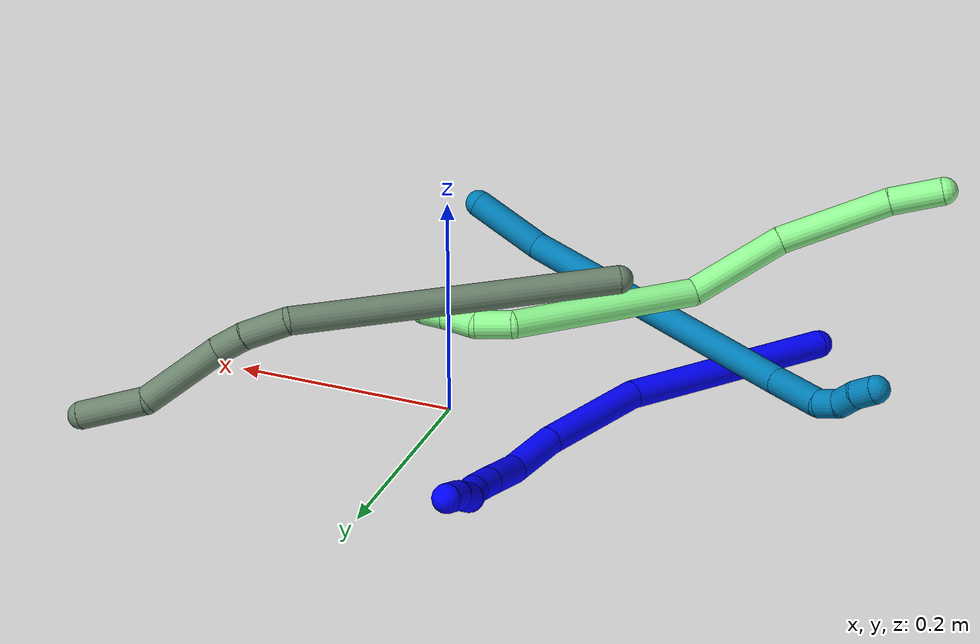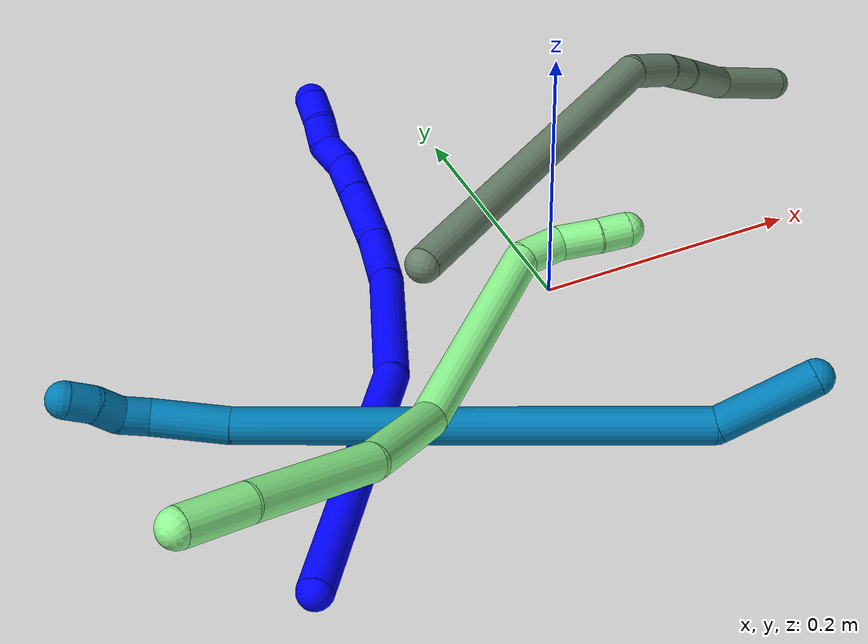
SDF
<sdf version="1.7">
 <world name="default">
  <model name="photoneo_s_sensor">
   <static>1</static>
   <pose>0 0 2 1.57079 1.57079 3.14159</pose>
   <link name="link">
    <inertial><mass>0.1</mass></inertial>
    <sensor name="sensor" type="depth">
     <update_rate>30</update_rate>
     <camera>
      <horizontal_fov>1.22</horizontal_fov>
      <image><width>1920</width><height>1200</height><format>B8G8R8</format></image>
      <clip><near>0.1</near><far>4</far></clip>
      <depth_camera><output>points</output></depth_camera>
     </camera>
     <plugin name="camera_plugin" filename="libgazebo_ros_depth_camera.so">
      <baseline>0.2</baseline>
      <alwaysOn>1</alwaysOn>
      <updateRate>0.0</updateRate>
      <cameraName>camera_ir</cameraName>
      <imageTopicName>/camera/color/image_raw</imageTopicName>
      <cameraInfoTopicName>/camera/color/camera_info</cameraInfoTopicName>
      <depthImageTopicName>/camera/depth/image_raw</depthImageTopicName>
      <depthImageCameraInfoTopicName>/camera/depth/camera_info</depthImageCameraInfoTopicName>
      <pointCloudTopicName>/camera/depth/points</pointCloudTopicName>
      <frameName>fr_optical</frameName>
      <pointCloudCutoff>0.1</pointCloudCutoff>
      <pointCloudCutoffMax>2.0</pointCloudCutoffMax>
      <distortionK1>0</distortionK1>
      <distortionK2>0</distortionK2>
      <distortionK3>0</distortionK3>
      <distortionT1>0</distortionT1>
      <distortionT2>0</distortionT2>
      <CxPrime>0</CxPrime>
      <Cx>0</Cx>
      <Cy>0</Cy>
      <focalLength>0</focalLength>
      <hackBaseline>0</hackBaseline>
     </plugin>
    </sensor>
   </link>
  </model>
  <model name="bin">
   <static>1</static>
   <link name="bottom">
    <collision name="collision-bottom">
     <pose>0 0 -0.01 0 -0 0</pose>
     <geometry><box><size>0.8 0.6 0.02</size></box></geometry>
     <surface>
      <friction><ode><mu>100</mu><mu2>100</mu2></ode></friction>
      <contact><collide_bitmask>65535</collide_bitmask></contact>
     </surface>
    </collision>
   </link>
   <link name="west_wall">
    <collision name="collision-west_wall">
     <pose>-0.41 0 0.1 0 -0 0</pose>
     <geometry><box><size>0.02 0.6 0.2</size></box></geometry>
     <surface>
      <friction><ode><mu>100</mu><mu2>100</mu2></ode></friction>
      <contact><collide_bitmask>65535</collide_bitmask></contact>
     </surface>
    </collision>
   </link>
   <link name="east_wall">
    <collision name="collision-east_wall">
     <pose>0.41 0 0.1 0 -0 0</pose>
     <geometry><box><size>0.02 0.6 0.2</size></box></geometry>
     <surface>
      <friction><ode><mu>100</mu><mu2>100</mu2></ode></friction>
      <contact><collide_bitmask>65535</collide_bitmask></contact>
     </surface>
    </collision>
   </link>
   <link name="south_wall">
    <collision name="collision-south_wall">
     <pose>0 -0.31 0.1 0 -0 0</pose>
     <geometry><box><size>0.8 0.02 0.2</size></box></geometry>
     <surface>
      <friction><ode><mu>100</mu><mu2>100</mu2></ode></friction>
      <contact><collide_bitmask>65535</collide_bitmask></contact>
     </surface>
    </collision>
   </link>
   <link name="north_wall">
    <collision name="collision-north_wall">
     <pose>0 0.31 0.1 0 -0 0</pose>
     <geometry><box><size>0.8 0.02 0.2</size></box></geometry>
     <surface>
      <friction><ode><mu>100</mu><mu2>100</mu2></ode></friction>
      <contact><collide_bitmask>65535</collide_bitmask></contact>
     </surface>
    </collision>
   </link>
  </model>
  <model name="1">
   <static>0</static>
   <link name="1">
    <collision name="collision-cylinder-e_1_1_4">
     <pose>0.00056 0.028806 -0.094946 -2.84702 0.005648 -0.038066</pose>
     <geometry><cylinder><radius>0.0125</radius><length>0.198443</length></cylinder></geometry>
     <surface>
      <friction><ode><mu>1.16</mu><mu2>1.16</mu2><slip1>0</slip1><slip2>0</slip2></ode></friction>
      <contact><ode><kp>1e+06</kp><kd>1</kd><max_vel>0</max_vel><min_depth>0.001</min_depth></ode></contact>
     </surface>
    </collision>
    <visual name="visual-cylinder-e_1_1_4">
     <pose>0.00056 0.028806 -0.094946 -2.84702 0.005648 -0.038066</pose>
     <geometry><cylinder><radius>0.0125</radius><length>0.198443</length></cylinder></geometry>
     <material><ambient>0 0 1 1</ambient></material>
    </visual>
    <collision name="collision-cylinder-e_2_4_5">
     <pose>0.011502 0.082179 -0.235246 -2.64517 0.198614 -0.749146</pose>
     <geometry><cylinder><radius>0.0125</radius><length>0.105228</length></cylinder></geometry>
     <surface>
      <friction><ode><mu>1.16</mu><mu2>1.16</mu2><slip1>0</slip1><slip2>0</slip2></ode></friction>
      <contact><ode><kp>1e+06</kp><kd>1</kd><max_vel>0</max_vel><min_depth>0.001</min_depth></ode></contact>
     </surface>
    </collision>
    <visual name="visual-cylinder-e_2_4_5">
     <pose>0.011502 0.082179 -0.235246 -2.64517 0.198614 -0.749146</pose>
     <geometry><cylinder><radius>0.0125</radius><length>0.105228</length></cylinder></geometry>
     <material><ambient>0 0 1 1</ambient></material>
    </visual>
    <collision name="collision-cylinder-e_3_5_6">
     <pose>0.029335 0.121541 -0.301655 -2.52904 0.281836 -0.843379</pose>
     <geometry><cylinder><radius>0.0125</radius><length>0.053584</length></cylinder></geometry>
     <surface>
      <friction><ode><mu>1.16</mu><mu2>1.16</mu2><slip1>0</slip1><slip2>0</slip2></ode></friction>
      <contact><ode><kp>1e+06</kp><kd>1</kd><max_vel>0</max_vel><min_depth>0.001</min_depth></ode></contact>
     </surface>
    </collision>
    <visual name="visual-cylinder-e_3_5_6">
     <pose>0.029335 0.121541 -0.301655 -2.52904 0.281836 -0.843379</pose>
     <geometry><cylinder><radius>0.0125</radius><length>0.053584</length></cylinder></geometry>
     <material><ambient>0 0 1 1</ambient></material>
    </visual>
    <collision name="collision-cylinder-e_4_6_7">
     <pose>0.050432 0.144549 -0.340708 -2.71357 0.603857 -1.92305</pose>
     <geometry><cylinder><radius>0.0125</radius><length>0.048063</length></cylinder></geometry>
     <surface>
      <friction><ode><mu>1.16</mu><mu2>1.16</mu2><slip1>0</slip1><slip2>0</slip2></ode></friction>
      <contact><ode><kp>1e+06</kp><kd>1</kd><max_vel>0</max_vel><min_depth>0.001</min_depth></ode></contact>
     </surface>
    </collision>
    <visual name="visual-cylinder-e_4_6_7">
     <pose>0.050432 0.144549 -0.340708 -2.71357 0.603857 -1.92305</pose>
     <geometry><cylinder><radius>0.0125</radius><length>0.048063</length></cylinder></geometry>
     <material><ambient>0 0 1 1</ambient></material>
    </visual>
    <collision name="collision-cylinder-e_5_7_8">
     <pose>0.07217 0.157999 -0.369358 -2.68449 0.598323 -1.84919</pose>
     <geometry><cylinder><radius>0.0125</radius><length>0.028735</length></cylinder></geometry>
     <surface>
      <friction><ode><mu>1.16</mu><mu2>1.16</mu2><slip1>0</slip1><slip2>0</slip2></ode></friction>
      <contact><ode><kp>1e+06</kp><kd>1</kd><max_vel>0</max_vel><min_depth>0.001</min_depth></ode></contact>
     </surface>
    </collision>
    <visual name="visual-cylinder-e_5_7_8">
     <pose>0.07217 0.157999 -0.369358 -2.68449 0.598323 -1.84919</pose>
     <geometry><cylinder><radius>0.0125</radius><length>0.028735</length></cylinder></geometry>
     <material><ambient>0 0 1 1</ambient></material>
    </visual>
    <collision name="collision-cylinder-e_6_8_9">
     <pose>0.088999 0.168234 -0.385991 -2.44563 0.842446 -1.78044</pose>
     <geometry><cylinder><radius>0.0125</radius><length>0.023412</length></cylinder></geometry>
     <surface>
      <friction><ode><mu>1.16</mu><mu2>1.16</mu2><slip1>0</slip1><slip2>0</slip2></ode></friction>
      <contact><ode><kp>1e+06</kp><kd>1</kd><max_vel>0</max_vel><min_depth>0.001</min_depth></ode></contact>
     </surface>
    </collision>
    <visual name="visual-cylinder-e_6_8_9">
     <pose>0.088999 0.168234 -0.385991 -2.44563 0.842446 -1.78044</pose>
     <geometry><cylinder><radius>0.0125</radius><length>0.023412</length></cylinder></geometry>
     <material><ambient>0 0 1 1</ambient></material>
    </visual>
    <collision name="collision-cylinder-e_7_9_10">
     <pose>0.104523 0.173678 -0.400094 -3.0865 0.695367 -2.98982</pose>
     <geometry><cylinder><radius>0.0125</radius><length>0.021191</length></cylinder></geometry>
     <surface>
      <friction><ode><mu>1.16</mu><mu2>1.16</mu2><slip1>0</slip1><slip2>0</slip2></ode></friction>
      <contact><ode><kp>1e+06</kp><kd>1</kd><max_vel>0</max_vel><min_depth>0.001</min_depth></ode></contact>
     </surface>
    </collision>
    <visual name="visual-cylinder-e_7_9_10">
     <pose>0.104523 0.173678 -0.400094 -3.0865 0.695367 -2.98982</pose>
     <geometry><cylinder><radius>0.0125</radius><length>0.021191</length></cylinder></geometry>
     <material><ambient>0 0 1 1</ambient></material>
    </visual>
    <collision name="collision-cylinder-e_8_10_2">
     <pose>0.117807 0.176824 -0.416243 -2.81738 0.654364 -2.2435</pose>
     <geometry><cylinder><radius>0.0125</radius><length>0.021344</length></cylinder></geometry>
     <surface>
      <friction><ode><mu>1.16</mu><mu2>1.16</mu2><slip1>0</slip1><slip2>0</slip2></ode></friction>
      <contact><ode><kp>1e+06</kp><kd>1</kd><max_vel>0</max_vel><min_depth>0.001</min_depth></ode></contact>
     </surface>
    </collision>
    <visual name="visual-cylinder-e_8_10_2">
     <pose>0.117807 0.176824 -0.416243 -2.81738 0.654364 -2.2435</pose>
     <geometry><cylinder><radius>0.0125</radius><length>0.021344</length></cylinder></geometry>
     <material><ambient>0 0 1 1</ambient></material>
    </visual>
    <collision name="collision-sphere-2">
     <pose>0.124302 0.179521 -0.42427 0 -0 0</pose>
     <geometry><sphere><radius>0.0125</radius></sphere></geometry>
     <surface>
      <friction><ode><mu>1.16</mu><mu2>1.16</mu2><slip1>0</slip1><slip2>0</slip2></ode></friction>
      <contact><ode><kp>1e+06</kp><kd>1</kd><max_vel>0</max_vel><min_depth>0.001</min_depth></ode></contact>
     </surface>
    </collision>
    <visual name="visual-sphere-2">
     <pose>0.124302 0.179521 -0.42427 0 -0 0</pose>
     <geometry><sphere><radius>0.0125</radius></sphere></geometry>
     <material><ambient>0 0 1 1</ambient></material>
    </visual>
    <collision name="collision-sphere-10">
     <pose>0.111311 0.174126 -0.408217 0 -0 0</pose>
     <geometry><sphere><radius>0.0125</radius></sphere></geometry>
     <surface>
      <friction><ode><mu>1.16</mu><mu2>1.16</mu2><slip1>0</slip1><slip2>0</slip2></ode></friction>
      <contact><ode><kp>1e+06</kp><kd>1</kd><max_vel>0</max_vel><min_depth>0.001</min_depth></ode></contact>
     </surface>
    </collision>
    <visual name="visual-sphere-10">
     <pose>0.111311 0.174126 -0.408217 0 -0 0</pose>
     <geometry><sphere><radius>0.0125</radius></sphere></geometry>
     <material><ambient>0 0 1 1</ambient></material>
    </visual>
    <collision name="collision-sphere-9">
     <pose>0.097735 0.17323 -0.391971 0 -0 0</pose>
     <geometry><sphere><radius>0.0125</radius></sphere></geometry>
     <surface>
      <friction><ode><mu>1.16</mu><mu2>1.16</mu2><slip1>0</slip1><slip2>0</slip2></ode></friction>
      <contact><ode><kp>1e+06</kp><kd>1</kd><max_vel>0</max_vel><min_depth>0.001</min_depth></ode></contact>
     </surface>
    </collision>
    <visual name="visual-sphere-9">
     <pose>0.097735 0.17323 -0.391971 0 -0 0</pose>
     <geometry><sphere><radius>0.0125</radius></sphere></geometry>
     <material><ambient>0 0 1 1</ambient></material>
    </visual>
    <collision name="collision-sphere-4">
     <pose>0.001121 0.057612 -0.189892 0 -0 0</pose>
     <geometry><sphere><radius>0.0125</radius></sphere></geometry>
     <surface>
      <friction><ode><mu>1.16</mu><mu2>1.16</mu2><slip1>0</slip1><slip2>0</slip2></ode></friction>
      <contact><ode><kp>1e+06</kp><kd>1</kd><max_vel>0</max_vel><min_depth>0.001</min_depth></ode></contact>
     </surface>
    </collision>
    <visual name="visual-sphere-4">
     <pose>0.001121 0.057612 -0.189892 0 -0 0</pose>
     <geometry><sphere><radius>0.0125</radius></sphere></geometry>
     <material><ambient>0 0 1 1</ambient></material>
    </visual>
    <collision name="collision-sphere-1">
     <geometry><sphere><radius>0.0125</radius></sphere></geometry>
     <surface>
      <friction><ode><mu>1.16</mu><mu2>1.16</mu2><slip1>0</slip1><slip2>0</slip2></ode></friction>
      <contact><ode><kp>1e+06</kp><kd>1</kd><max_vel>0</max_vel><min_depth>0.001</min_depth></ode></contact>
     </surface>
    </collision>
    <visual name="visual-sphere-1">
     <geometry><sphere><radius>0.0125</radius></sphere></geometry>
     <material><ambient>0 0 1 1</ambient></material>
    </visual>
    <collision name="collision-sphere-8">
     <pose>0.080263 0.163239 -0.380011 0 -0 0</pose>
     <geometry><sphere><radius>0.0125</radius></sphere></geometry>
     <surface>
      <friction><ode><mu>1.16</mu><mu2>1.16</mu2><slip1>0</slip1><slip2>0</slip2></ode></friction>
      <contact><ode><kp>1e+06</kp><kd>1</kd><max_vel>0</max_vel><min_depth>0.001</min_depth></ode></contact>
     </surface>
    </collision>
    <visual name="visual-sphere-8">
     <pose>0.080263 0.163239 -0.380011 0 -0 0</pose>
     <geometry><sphere><radius>0.0125</radius></sphere></geometry>
     <material><ambient>0 0 1 1</ambient></material>
    </visual>
    <collision name="collision-sphere-5">
     <pose>0.021883 0.106745 -0.280599 0 -0 0</pose>
     <geometry><sphere><radius>0.0125</radius></sphere></geometry>
     <surface>
      <friction><ode><mu>1.16</mu><mu2>1.16</mu2><slip1>0</slip1><slip2>0</slip2></ode></friction>
      <contact><ode><kp>1e+06</kp><kd>1</kd><max_vel>0</max_vel><min_depth>0.001</min_depth></ode></contact>
     </surface>
    </collision>
    <visual name="visual-sphere-5">
     <pose>0.021883 0.106745 -0.280599 0 -0 0</pose>
     <geometry><sphere><radius>0.0125</radius></sphere></geometry>
     <material><ambient>0 0 1 1</ambient></material>
    </visual>
    <collision name="collision-sphere-6">
     <pose>0.036786 0.136338 -0.322711 0 -0 0</pose>
     <geometry><sphere><radius>0.0125</radius></sphere></geometry>
     <surface>
      <friction><ode><mu>1.16</mu><mu2>1.16</mu2><slip1>0</slip1><slip2>0</slip2></ode></friction>
      <contact><ode><kp>1e+06</kp><kd>1</kd><max_vel>0</max_vel><min_depth>0.001</min_depth></ode></contact>
     </surface>
    </collision>
    <visual name="visual-sphere-6">
     <pose>0.036786 0.136338 -0.322711 0 -0 0</pose>
     <geometry><sphere><radius>0.0125</radius></sphere></geometry>
     <material><ambient>0 0 1 1</ambient></material>
    </visual>
    <collision name="collision-sphere-7">
     <pose>0.064077 0.152759 -0.358705 0 -0 0</pose>
     <geometry><sphere><radius>0.0125</radius></sphere></geometry>
     <surface>
      <friction><ode><mu>1.16</mu><mu2>1.16</mu2><slip1>0</slip1><slip2>0</slip2></ode></friction>
      <contact><ode><kp>1e+06</kp><kd>1</kd><max_vel>0</max_vel><min_depth>0.001</min_depth></ode></contact>
     </surface>
    </collision>
    <visual name="visual-sphere-7">
     <pose>0.064077 0.152759 -0.358705 0 -0 0</pose>
     <geometry><sphere><radius>0.0125</radius></sphere></geometry>
     <material><ambient>0 0 1 1</ambient></material>
    </visual>
    <inertial>
     <pose>0.028408 0.087515 -0.226297 0 -0 0</pose>
     <mass>0.5</mass>
     <inertia>
      <ixx>0.000627</ixx>
      <ixy>0</ixy>
      <ixz>0</ixz>
      <iyy>-0.000786</iyy>
      <iyz>0</iyz>
      <izz>-0.000326</izz>
     </inertia>
    </inertial>
   </link>
   <pose>-0.270779 -0.212165 0.012476 -1.89278 -0.628383 2.49965</pose>
  </model>
  <model name="9">
   <static>0</static>
   <link name="9">
    <collision name="collision-cylinder-e_1_1_4">
     <pose>-0.019156 0.001786 0.029632 -0.060189 -0.57307 0.017739</pose>
     <geometry><cylinder><radius>0.0125</radius><length>0.07066</length></cylinder></geometry>
     <surface>
      <friction><ode><mu>1.16</mu><mu2>1.16</mu2><slip1>0</slip1><slip2>0</slip2></ode></friction>
      <contact><ode><kp>1e+06</kp><kd>1</kd><max_vel>0</max_vel><min_depth>0.001</min_depth></ode></contact>
     </surface>
    </collision>
    <visual name="visual-cylinder-e_1_1_4">
     <pose>-0.019156 0.001786 0.029632 -0.060189 -0.57307 0.017739</pose>
     <geometry><cylinder><radius>0.0125</radius><length>0.07066</length></cylinder></geometry>
     <material><ambient>0 0.490196 0.709804 1</ambient></material>
    </visual>
    <collision name="collision-cylinder-e_2_4_5">
     <pose>-0.058932 0.029739 0.212936 -0.168663 -0.131506 0.011132</pose>
     <geometry><cylinder><radius>0.0125</radius><length>0.314483</length></cylinder></geometry>
     <surface>
      <friction><ode><mu>1.16</mu><mu2>1.16</mu2><slip1>0</slip1><slip2>0</slip2></ode></friction>
      <contact><ode><kp>1e+06</kp><kd>1</kd><max_vel>0</max_vel><min_depth>0.001</min_depth></ode></contact>
     </surface>
    </collision>
    <visual name="visual-cylinder-e_2_4_5">
     <pose>-0.058932 0.029739 0.212936 -0.168663 -0.131506 0.011132</pose>
     <geometry><cylinder><radius>0.0125</radius><length>0.314483</length></cylinder></geometry>
     <material><ambient>0 0.490196 0.709804 1</ambient></material>
    </visual>
    <collision name="collision-cylinder-e_3_5_6">
     <pose>-0.080424 0.061301 0.393149 -0.200523 -0.032237 0.003243</pose>
     <geometry><cylinder><radius>0.0125</radius><length>0.054197</length></cylinder></geometry>
     <surface>
      <friction><ode><mu>1.16</mu><mu2>1.16</mu2><slip1>0</slip1><slip2>0</slip2></ode></friction>
      <contact><ode><kp>1e+06</kp><kd>1</kd><max_vel>0</max_vel><min_depth>0.001</min_depth></ode></contact>
     </surface>
    </collision>
    <visual name="visual-cylinder-e_3_5_6">
     <pose>-0.080424 0.061301 0.393149 -0.200523 -0.032237 0.003243</pose>
     <geometry><cylinder><radius>0.0125</radius><length>0.054197</length></cylinder></geometry>
     <material><ambient>0 0.490196 0.709804 1</ambient></material>
    </visual>
    <collision name="collision-cylinder-e_4_6_7">
     <pose>-0.080681 0.064656 0.429674 0.201528 0.060385 0.006107</pose>
     <geometry><cylinder><radius>0.0125</radius><length>0.020415</length></cylinder></geometry>
     <surface>
      <friction><ode><mu>1.16</mu><mu2>1.16</mu2><slip1>0</slip1><slip2>0</slip2></ode></friction>
      <contact><ode><kp>1e+06</kp><kd>1</kd><max_vel>0</max_vel><min_depth>0.001</min_depth></ode></contact>
     </surface>
    </collision>
    <visual name="visual-cylinder-e_4_6_7">
     <pose>-0.080681 0.064656 0.429674 0.201528 0.060385 0.006107</pose>
     <geometry><cylinder><radius>0.0125</radius><length>0.020415</length></cylinder></geometry>
     <material><ambient>0 0.490196 0.709804 1</ambient></material>
    </visual>
    <collision name="collision-cylinder-e_5_7_8">
     <pose>-0.07589 0.0588 0.447975 0.430184 0.427966 0.094881</pose>
     <geometry><cylinder><radius>0.0125</radius><length>0.020119</length></cylinder></geometry>
     <surface>
      <friction><ode><mu>1.16</mu><mu2>1.16</mu2><slip1>0</slip1><slip2>0</slip2></ode></friction>
      <contact><ode><kp>1e+06</kp><kd>1</kd><max_vel>0</max_vel><min_depth>0.001</min_depth></ode></contact>
     </surface>
    </collision>
    <visual name="visual-cylinder-e_5_7_8">
     <pose>-0.07589 0.0588 0.447975 0.430184 0.427966 0.094881</pose>
     <geometry><cylinder><radius>0.0125</radius><length>0.020119</length></cylinder></geometry>
     <material><ambient>0 0.490196 0.709804 1</ambient></material>
    </visual>
    <collision name="collision-cylinder-e_6_8_2">
     <pose>-0.069682 0.051393 0.465472 0.3728 0.203481 0.038503</pose>
     <geometry><cylinder><radius>0.0125</radius><length>0.020126</length></cylinder></geometry>
     <surface>
      <friction><ode><mu>1.16</mu><mu2>1.16</mu2><slip1>0</slip1><slip2>0</slip2></ode></friction>
      <contact><ode><kp>1e+06</kp><kd>1</kd><max_vel>0</max_vel><min_depth>0.001</min_depth></ode></contact>
     </surface>
    </collision>
    <visual name="visual-cylinder-e_6_8_2">
     <pose>-0.069682 0.051393 0.465472 0.3728 0.203481 0.038503</pose>
     <geometry><cylinder><radius>0.0125</radius><length>0.020126</length></cylinder></geometry>
     <material><ambient>0 0.490196 0.709804 1</ambient></material>
    </visual>
    <collision name="collision-sphere-2">
     <pose>-0.067648 0.047804 0.47465 0 -0 0</pose>
     <geometry><sphere><radius>0.0125</radius></sphere></geometry>
     <surface>
      <friction><ode><mu>1.16</mu><mu2>1.16</mu2><slip1>0</slip1><slip2>0</slip2></ode></friction>
      <contact><ode><kp>1e+06</kp><kd>1</kd><max_vel>0</max_vel><min_depth>0.001</min_depth></ode></contact>
     </surface>
    </collision>
    <visual name="visual-sphere-2">
     <pose>-0.067648 0.047804 0.47465 0 -0 0</pose>
     <geometry><sphere><radius>0.0125</radius></sphere></geometry>
     <material><ambient>0 0.490196 0.709804 1</ambient></material>
    </visual>
    <collision name="collision-sphere-4">
     <pose>-0.038313 0.003571 0.059264 0 -0 0</pose>
     <geometry><sphere><radius>0.0125</radius></sphere></geometry>
     <surface>
      <friction><ode><mu>1.16</mu><mu2>1.16</mu2><slip1>0</slip1><slip2>0</slip2></ode></friction>
      <contact><ode><kp>1e+06</kp><kd>1</kd><max_vel>0</max_vel><min_depth>0.001</min_depth></ode></contact>
     </surface>
    </collision>
    <visual name="visual-sphere-4">
     <pose>-0.038313 0.003571 0.059264 0 -0 0</pose>
     <geometry><sphere><radius>0.0125</radius></sphere></geometry>
     <material><ambient>0 0.490196 0.709804 1</ambient></material>
    </visual>
    <collision name="collision-sphere-1">
     <geometry><sphere><radius>0.0125</radius></sphere></geometry>
     <surface>
      <friction><ode><mu>1.16</mu><mu2>1.16</mu2><slip1>0</slip1><slip2>0</slip2></ode></friction>
      <contact><ode><kp>1e+06</kp><kd>1</kd><max_vel>0</max_vel><min_depth>0.001</min_depth></ode></contact>
     </surface>
    </collision>
    <visual name="visual-sphere-1">
     <geometry><sphere><radius>0.0125</radius></sphere></geometry>
     <material><ambient>0 0.490196 0.709804 1</ambient></material>
    </visual>
    <collision name="collision-sphere-8">
     <pose>-0.071715 0.054983 0.456294 0 -0 0</pose>
     <geometry><sphere><radius>0.0125</radius></sphere></geometry>
     <surface>
      <friction><ode><mu>1.16</mu><mu2>1.16</mu2><slip1>0</slip1><slip2>0</slip2></ode></friction>
      <contact><ode><kp>1e+06</kp><kd>1</kd><max_vel>0</max_vel><min_depth>0.001</min_depth></ode></contact>
     </surface>
    </collision>
    <visual name="visual-sphere-8">
     <pose>-0.071715 0.054983 0.456294 0 -0 0</pose>
     <geometry><sphere><radius>0.0125</radius></sphere></geometry>
     <material><ambient>0 0.490196 0.709804 1</ambient></material>
    </visual>
    <collision name="collision-sphere-5">
     <pose>-0.07955 0.055906 0.366607 0 -0 0</pose>
     <geometry><sphere><radius>0.0125</radius></sphere></geometry>
     <surface>
      <friction><ode><mu>1.16</mu><mu2>1.16</mu2><slip1>0</slip1><slip2>0</slip2></ode></friction>
      <contact><ode><kp>1e+06</kp><kd>1</kd><max_vel>0</max_vel><min_depth>0.001</min_depth></ode></contact>
     </surface>
    </collision>
    <visual name="visual-sphere-5">
     <pose>-0.07955 0.055906 0.366607 0 -0 0</pose>
     <geometry><sphere><radius>0.0125</radius></sphere></geometry>
     <material><ambient>0 0.490196 0.709804 1</ambient></material>
    </visual>
    <collision name="collision-sphere-6">
     <pose>-0.081297 0.066696 0.419691 0 -0 0</pose>
     <geometry><sphere><radius>0.0125</radius></sphere></geometry>
     <surface>
      <friction><ode><mu>1.16</mu><mu2>1.16</mu2><slip1>0</slip1><slip2>0</slip2></ode></friction>
      <contact><ode><kp>1e+06</kp><kd>1</kd><max_vel>0</max_vel><min_depth>0.001</min_depth></ode></contact>
     </surface>
    </collision>
    <visual name="visual-sphere-6">
     <pose>-0.081297 0.066696 0.419691 0 -0 0</pose>
     <geometry><sphere><radius>0.0125</radius></sphere></geometry>
     <material><ambient>0 0.490196 0.709804 1</ambient></material>
    </visual>
    <collision name="collision-sphere-7">
     <pose>-0.080065 0.062617 0.439657 0 -0 0</pose>
     <geometry><sphere><radius>0.0125</radius></sphere></geometry>
     <surface>
      <friction><ode><mu>1.16</mu><mu2>1.16</mu2><slip1>0</slip1><slip2>0</slip2></ode></friction>
      <contact><ode><kp>1e+06</kp><kd>1</kd><max_vel>0</max_vel><min_depth>0.001</min_depth></ode></contact>
     </surface>
    </collision>
    <visual name="visual-sphere-7">
     <pose>-0.080065 0.062617 0.439657 0 -0 0</pose>
     <geometry><sphere><radius>0.0125</radius></sphere></geometry>
     <material><ambient>0 0.490196 0.709804 1</ambient></material>
    </visual>
    <inertial>
     <pose>-0.057643 0.032676 0.235037 0 -0 0</pose>
     <mass>0.5</mass>
     <inertia>
      <ixx>0.002652</ixx>
      <ixy>0</ixy>
      <ixz>0</ixz>
      <iyy>0.002652</iyy>
      <iyz>0</iyz>
      <izz>-4.1e-05</izz>
     </inertia>
    </inertial>
   </link>
   <pose>0.068684 -0.237715 0.079526 -1.20403 -1.1181 0.857817</pose>
  </model>
  <model name="13">
   <static>0</static>
   <link name="13">
    <collision name="collision-cylinder-e_1_1_4">
     <pose>0.002508 -0.008181 -0.02255 2.79358 0.10418 0.576666</pose>
     <geometry><cylinder><radius>0.0125</radius><length>0.048238</length></cylinder></geometry>
     <surface>
      <friction><ode><mu>1.16</mu><mu2>1.16</mu2><slip1>0</slip1><slip2>0</slip2></ode></friction>
      <contact><ode><kp>1e+06</kp><kd>1</kd><max_vel>0</max_vel><min_depth>0.001</min_depth></ode></contact>
     </surface>
    </collision>
    <visual name="visual-cylinder-e_1_1_4">
     <pose>0.002508 -0.008181 -0.02255 2.79358 0.10418 0.576666</pose>
     <geometry><cylinder><radius>0.0125</radius><length>0.048238</length></cylinder></geometry>
     <material><ambient>0.564706 0.984314 0.572549 1</ambient></material>
    </visual>
    <collision name="collision-cylinder-e_2_4_5">
     <pose>0.002411 -0.034921 -0.093364 2.77448 -0.050343 -0.26959</pose>
     <geometry><cylinder><radius>0.0125</radius><length>0.103549</length></cylinder></geometry>
     <surface>
      <friction><ode><mu>1.16</mu><mu2>1.16</mu2><slip1>0</slip1><slip2>0</slip2></ode></friction>
      <contact><ode><kp>1e+06</kp><kd>1</kd><max_vel>0</max_vel><min_depth>0.001</min_depth></ode></contact>
     </surface>
    </collision>
    <visual name="visual-cylinder-e_2_4_5">
     <pose>0.002411 -0.034921 -0.093364 2.77448 -0.050343 -0.26959</pose>
     <geometry><cylinder><radius>0.0125</radius><length>0.103549</length></cylinder></geometry>
     <material><ambient>0.564706 0.984314 0.572549 1</ambient></material>
    </visual>
    <collision name="collision-cylinder-e_3_5_6">
     <pose>-0.014755 -0.062414 -0.18379 2.9328 -0.325801 -2.00651</pose>
     <geometry><cylinder><radius>0.0125</radius><length>0.090982</length></cylinder></geometry>
     <surface>
      <friction><ode><mu>1.16</mu><mu2>1.16</mu2><slip1>0</slip1><slip2>0</slip2></ode></friction>
      <contact><ode><kp>1e+06</kp><kd>1</kd><max_vel>0</max_vel><min_depth>0.001</min_depth></ode></contact>
     </surface>
    </collision>
    <visual name="visual-cylinder-e_3_5_6">
     <pose>-0.014755 -0.062414 -0.18379 2.9328 -0.325801 -2.00651</pose>
     <geometry><cylinder><radius>0.0125</radius><length>0.090982</length></cylinder></geometry>
     <material><ambient>0.564706 0.984314 0.572549 1</ambient></material>
    </visual>
    <collision name="collision-cylinder-e_4_6_7">
     <pose>-0.036719 -0.057721 -0.310725 -2.98222 -0.08602 0.988629</pose>
     <geometry><cylinder><radius>0.0125</radius><length>0.172359</length></cylinder></geometry>
     <surface>
      <friction><ode><mu>1.16</mu><mu2>1.16</mu2><slip1>0</slip1><slip2>0</slip2></ode></friction>
      <contact><ode><kp>1e+06</kp><kd>1</kd><max_vel>0</max_vel><min_depth>0.001</min_depth></ode></contact>
     </surface>
    </collision>
    <visual name="visual-cylinder-e_4_6_7">
     <pose>-0.036719 -0.057721 -0.310725 -2.98222 -0.08602 0.988629</pose>
     <geometry><cylinder><radius>0.0125</radius><length>0.172359</length></cylinder></geometry>
     <material><ambient>0.564706 0.984314 0.572549 1</ambient></material>
    </visual>
    <collision name="collision-cylinder-e_5_7_8">
     <pose>-0.039958 -0.047802 -0.410927 2.90581 0.256718 1.65664</pose>
     <geometry><cylinder><radius>0.0125</radius><length>0.032811</length></cylinder></geometry>
     <surface>
      <friction><ode><mu>1.16</mu><mu2>1.16</mu2><slip1>0</slip1><slip2>0</slip2></ode></friction>
      <contact><ode><kp>1e+06</kp><kd>1</kd><max_vel>0</max_vel><min_depth>0.001</min_depth></ode></contact>
     </surface>
    </collision>
    <visual name="visual-cylinder-e_5_7_8">
     <pose>-0.039958 -0.047802 -0.410927 2.90581 0.256718 1.65664</pose>
     <geometry><cylinder><radius>0.0125</radius><length>0.032811</length></cylinder></geometry>
     <material><ambient>0.564706 0.984314 0.572549 1</ambient></material>
    </visual>
    <collision name="collision-cylinder-e_6_8_9">
     <pose>-0.026941 -0.057442 -0.437246 2.64276 0.619887 1.7978</pose>
     <geometry><cylinder><radius>0.0125</radius><length>0.030472</length></cylinder></geometry>
     <surface>
      <friction><ode><mu>1.16</mu><mu2>1.16</mu2><slip1>0</slip1><slip2>0</slip2></ode></friction>
      <contact><ode><kp>1e+06</kp><kd>1</kd><max_vel>0</max_vel><min_depth>0.001</min_depth></ode></contact>
     </surface>
    </collision>
    <visual name="visual-cylinder-e_6_8_9">
     <pose>-0.026941 -0.057442 -0.437246 2.64276 0.619887 1.7978</pose>
     <geometry><cylinder><radius>0.0125</radius><length>0.030472</length></cylinder></geometry>
     <material><ambient>0.564706 0.984314 0.572549 1</ambient></material>
    </visual>
    <collision name="collision-cylinder-e_7_9_2">
     <pose>-0.01251 -0.067286 -0.456507 2.70445 0.543284 1.79519</pose>
     <geometry><cylinder><radius>0.0125</radius><length>0.021587</length></cylinder></geometry>
     <surface>
      <friction><ode><mu>1.16</mu><mu2>1.16</mu2><slip1>0</slip1><slip2>0</slip2></ode></friction>
      <contact><ode><kp>1e+06</kp><kd>1</kd><max_vel>0</max_vel><min_depth>0.001</min_depth></ode></contact>
     </surface>
    </collision>
    <visual name="visual-cylinder-e_7_9_2">
     <pose>-0.01251 -0.067286 -0.456507 2.70445 0.543284 1.79519</pose>
     <geometry><cylinder><radius>0.0125</radius><length>0.021587</length></cylinder></geometry>
     <material><ambient>0.564706 0.984314 0.572549 1</ambient></material>
    </visual>
    <collision name="collision-sphere-2">
     <pose>-0.00693 -0.071198 -0.464877 0 -0 0</pose>
     <geometry><sphere><radius>0.0125</radius></sphere></geometry>
     <surface>
      <friction><ode><mu>1.16</mu><mu2>1.16</mu2><slip1>0</slip1><slip2>0</slip2></ode></friction>
      <contact><ode><kp>1e+06</kp><kd>1</kd><max_vel>0</max_vel><min_depth>0.001</min_depth></ode></contact>
     </surface>
    </collision>
    <visual name="visual-sphere-2">
     <pose>-0.00693 -0.071198 -0.464877 0 -0 0</pose>
     <geometry><sphere><radius>0.0125</radius></sphere></geometry>
     <material><ambient>0.564706 0.984314 0.572549 1</ambient></material>
    </visual>
    <collision name="collision-sphere-9">
     <pose>-0.018089 -0.063375 -0.448136 0 -0 0</pose>
     <geometry><sphere><radius>0.0125</radius></sphere></geometry>
     <surface>
      <friction><ode><mu>1.16</mu><mu2>1.16</mu2><slip1>0</slip1><slip2>0</slip2></ode></friction>
      <contact><ode><kp>1e+06</kp><kd>1</kd><max_vel>0</max_vel><min_depth>0.001</min_depth></ode></contact>
     </surface>
    </collision>
    <visual name="visual-sphere-9">
     <pose>-0.018089 -0.063375 -0.448136 0 -0 0</pose>
     <geometry><sphere><radius>0.0125</radius></sphere></geometry>
     <material><ambient>0.564706 0.984314 0.572549 1</ambient></material>
    </visual>
    <collision name="collision-sphere-4">
     <pose>0.005016 -0.016361 -0.0451 0 -0 0</pose>
     <geometry><sphere><radius>0.0125</radius></sphere></geometry>
     <surface>
      <friction><ode><mu>1.16</mu><mu2>1.16</mu2><slip1>0</slip1><slip2>0</slip2></ode></friction>
      <contact><ode><kp>1e+06</kp><kd>1</kd><max_vel>0</max_vel><min_depth>0.001</min_depth></ode></contact>
     </surface>
    </collision>
    <visual name="visual-sphere-4">
     <pose>0.005016 -0.016361 -0.0451 0 -0 0</pose>
     <geometry><sphere><radius>0.0125</radius></sphere></geometry>
     <material><ambient>0.564706 0.984314 0.572549 1</ambient></material>
    </visual>
    <collision name="collision-sphere-1">
     <geometry><sphere><radius>0.0125</radius></sphere></geometry>
     <surface>
      <friction><ode><mu>1.16</mu><mu2>1.16</mu2><slip1>0</slip1><slip2>0</slip2></ode></friction>
      <contact><ode><kp>1e+06</kp><kd>1</kd><max_vel>0</max_vel><min_depth>0.001</min_depth></ode></contact>
     </surface>
    </collision>
    <visual name="visual-sphere-1">
     <geometry><sphere><radius>0.0125</radius></sphere></geometry>
     <material><ambient>0.564706 0.984314 0.572549 1</ambient></material>
    </visual>
    <collision name="collision-sphere-8">
     <pose>-0.035792 -0.051509 -0.426356 0 -0 0</pose>
     <geometry><sphere><radius>0.0125</radius></sphere></geometry>
     <surface>
      <friction><ode><mu>1.16</mu><mu2>1.16</mu2><slip1>0</slip1><slip2>0</slip2></ode></friction>
      <contact><ode><kp>1e+06</kp><kd>1</kd><max_vel>0</max_vel><min_depth>0.001</min_depth></ode></contact>
     </surface>
    </collision>
    <visual name="visual-sphere-8">
     <pose>-0.035792 -0.051509 -0.426356 0 -0 0</pose>
     <geometry><sphere><radius>0.0125</radius></sphere></geometry>
     <material><ambient>0.564706 0.984314 0.572549 1</ambient></material>
    </visual>
    <collision name="collision-sphere-5">
     <pose>-0.000194 -0.05348 -0.141627 0 -0 0</pose>
     <geometry><sphere><radius>0.0125</radius></sphere></geometry>
     <surface>
      <friction><ode><mu>1.16</mu><mu2>1.16</mu2><slip1>0</slip1><slip2>0</slip2></ode></friction>
      <contact><ode><kp>1e+06</kp><kd>1</kd><max_vel>0</max_vel><min_depth>0.001</min_depth></ode></contact>
     </surface>
    </collision>
    <visual name="visual-sphere-5">
     <pose>-0.000194 -0.05348 -0.141627 0 -0 0</pose>
     <geometry><sphere><radius>0.0125</radius></sphere></geometry>
     <material><ambient>0.564706 0.984314 0.572549 1</ambient></material>
    </visual>
    <collision name="collision-sphere-6">
     <pose>-0.029315 -0.071347 -0.225952 0 -0 0</pose>
     <geometry><sphere><radius>0.0125</radius></sphere></geometry>
     <surface>
      <friction><ode><mu>1.16</mu><mu2>1.16</mu2><slip1>0</slip1><slip2>0</slip2></ode></friction>
      <contact><ode><kp>1e+06</kp><kd>1</kd><max_vel>0</max_vel><min_depth>0.001</min_depth></ode></contact>
     </surface>
    </collision>
    <visual name="visual-sphere-6">
     <pose>-0.029315 -0.071347 -0.225952 0 -0 0</pose>
     <geometry><sphere><radius>0.0125</radius></sphere></geometry>
     <material><ambient>0.564706 0.984314 0.572549 1</ambient></material>
    </visual>
    <collision name="collision-sphere-7">
     <pose>-0.044123 -0.044096 -0.395498 0 -0 0</pose>
     <geometry><sphere><radius>0.0125</radius></sphere></geometry>
     <surface>
      <friction><ode><mu>1.16</mu><mu2>1.16</mu2><slip1>0</slip1><slip2>0</slip2></ode></friction>
      <contact><ode><kp>1e+06</kp><kd>1</kd><max_vel>0</max_vel><min_depth>0.001</min_depth></ode></contact>
     </surface>
    </collision>
    <visual name="visual-sphere-7">
     <pose>-0.044123 -0.044096 -0.395498 0 -0 0</pose>
     <geometry><sphere><radius>0.0125</radius></sphere></geometry>
     <material><ambient>0.564706 0.984314 0.572549 1</ambient></material>
    </visual>
    <inertial>
     <pose>-0.019405 -0.048819 -0.23539 0 -0 0</pose>
     <mass>0.5</mass>
     <inertia><ixx>0.000604</ixx><ixy>0</ixy><ixz>0</ixz><iyy>-4e-06</iyy><iyz>0</iyz><izz>8e-06</izz></inertia>
    </inertial>
   </link>
   <pose>-0.36457 -0.263892 0.158887 1.49303 -0.676838 -0.930327</pose>
  </model>
  <model name="17">
   <static>0</static>
   <link name="17">
    <collision name="collision-cylinder-e_1_1_4">
     <pose>0.141922 0.020282 0.019678 -0.800516 1.37425 -0.668281</pose>
     <geometry><cylinder><radius>0.0125</radius><length>0.289417</length></cylinder></geometry>
     <surface>
      <friction><ode><mu>1.16</mu><mu2>1.16</mu2><slip1>0</slip1><slip2>0</slip2></ode></friction>
      <contact><ode><kp>1e+06</kp><kd>1</kd><max_vel>0</max_vel><min_depth>0.001</min_depth></ode></contact>
     </surface>
    </collision>
    <visual name="visual-cylinder-e_1_1_4">
     <pose>0.141922 0.020282 0.019678 -0.800516 1.37425 -0.668281</pose>
     <geometry><cylinder><radius>0.0125</radius><length>0.289417</length></cylinder></geometry>
     <material><ambient>0.415686 0.509804 0.423529 1</ambient></material>
    </visual>
    <collision name="collision-cylinder-e_2_4_5">
     <pose>0.302672 0.035865 0.046889 0.557717 1.1301 0.359147</pose>
     <geometry><cylinder><radius>0.0125</radius><length>0.041631</length></cylinder></geometry>
     <surface>
      <friction><ode><mu>1.16</mu><mu2>1.16</mu2><slip1>0</slip1><slip2>0</slip2></ode></friction>
      <contact><ode><kp>1e+06</kp><kd>1</kd><max_vel>0</max_vel><min_depth>0.001</min_depth></ode></contact>
     </surface>
    </collision>
    <visual name="visual-cylinder-e_2_4_5">
     <pose>0.302672 0.035865 0.046889 0.557717 1.1301 0.359147</pose>
     <geometry><cylinder><radius>0.0125</radius><length>0.041631</length></cylinder></geometry>
     <material><ambient>0.415686 0.509804 0.423529 1</ambient></material>
    </visual>
    <collision name="collision-cylinder-e_3_5_6">
     <pose>0.333598 0.025909 0.058679 0.890057 1.06111 0.54565</pose>
     <geometry><cylinder><radius>0.0125</radius><length>0.027724</length></cylinder></geometry>
     <surface>
      <friction><ode><mu>1.16</mu><mu2>1.16</mu2><slip1>0</slip1><slip2>0</slip2></ode></friction>
      <contact><ode><kp>1e+06</kp><kd>1</kd><max_vel>0</max_vel><min_depth>0.001</min_depth></ode></contact>
     </surface>
    </collision>
    <visual name="visual-cylinder-e_3_5_6">
     <pose>0.333598 0.025909 0.058679 0.890057 1.06111 0.54565</pose>
     <geometry><cylinder><radius>0.0125</radius><length>0.027724</length></cylinder></geometry>
     <material><ambient>0.415686 0.509804 0.423529 1</ambient></material>
    </visual>
    <collision name="collision-cylinder-e_4_6_7">
     <pose>0.380149 0.005056 0.067642 1.27776 1.12906 0.87938</pose>
     <geometry><cylinder><radius>0.0125</radius><length>0.076218</length></cylinder></geometry>
     <surface>
      <friction><ode><mu>1.16</mu><mu2>1.16</mu2><slip1>0</slip1><slip2>0</slip2></ode></friction>
      <contact><ode><kp>1e+06</kp><kd>1</kd><max_vel>0</max_vel><min_depth>0.001</min_depth></ode></contact>
     </surface>
    </collision>
    <visual name="visual-cylinder-e_4_6_7">
     <pose>0.380149 0.005056 0.067642 1.27776 1.12906 0.87938</pose>
     <geometry><cylinder><radius>0.0125</radius><length>0.076218</length></cylinder></geometry>
     <material><ambient>0.415686 0.509804 0.423529 1</ambient></material>
    </visual>
    <collision name="collision-cylinder-e_5_7_2">
     <pose>0.441726 -0.017381 0.088901 0.391873 0.987239 0.21278</pose>
     <geometry><cylinder><radius>0.0125</radius><length>0.065011</length></cylinder></geometry>
     <surface>
      <friction><ode><mu>1.16</mu><mu2>1.16</mu2><slip1>0</slip1><slip2>0</slip2></ode></friction>
      <contact><ode><kp>1e+06</kp><kd>1</kd><max_vel>0</max_vel><min_depth>0.001</min_depth></ode></contact>
     </surface>
    </collision>
    <visual name="visual-cylinder-e_5_7_2">
     <pose>0.441726 -0.017381 0.088901 0.391873 0.987239 0.21278</pose>
     <geometry><cylinder><radius>0.0125</radius><length>0.065011</length></cylinder></geometry>
     <material><ambient>0.415686 0.509804 0.423529 1</ambient></material>
    </visual>
    <collision name="collision-sphere-2">
     <pose>0.468852 -0.024222 0.105453 0 -0 0</pose>
     <geometry><sphere><radius>0.0125</radius></sphere></geometry>
     <surface>
      <friction><ode><mu>1.16</mu><mu2>1.16</mu2><slip1>0</slip1><slip2>0</slip2></ode></friction>
      <contact><ode><kp>1e+06</kp><kd>1</kd><max_vel>0</max_vel><min_depth>0.001</min_depth></ode></contact>
     </surface>
    </collision>
    <visual name="visual-sphere-2">
     <pose>0.468852 -0.024222 0.105453 0 -0 0</pose>
     <geometry><sphere><radius>0.0125</radius></sphere></geometry>
     <material><ambient>0.415686 0.509804 0.423529 1</ambient></material>
    </visual>
    <collision name="collision-sphere-7">
     <pose>0.4146 -0.010541 0.072348 0 -0 0</pose>
     <geometry><sphere><radius>0.0125</radius></sphere></geometry>
     <surface>
      <friction><ode><mu>1.16</mu><mu2>1.16</mu2><slip1>0</slip1><slip2>0</slip2></ode></friction>
      <contact><ode><kp>1e+06</kp><kd>1</kd><max_vel>0</max_vel><min_depth>0.001</min_depth></ode></contact>
     </surface>
    </collision>
    <visual name="visual-sphere-7">
     <pose>0.4146 -0.010541 0.072348 0 -0 0</pose>
     <geometry><sphere><radius>0.0125</radius></sphere></geometry>
     <material><ambient>0.415686 0.509804 0.423529 1</ambient></material>
    </visual>
    <collision name="collision-sphere-6">
     <pose>0.345698 0.020654 0.062936 0 -0 0</pose>
     <geometry><sphere><radius>0.0125</radius></sphere></geometry>
     <surface>
      <friction><ode><mu>1.16</mu><mu2>1.16</mu2><slip1>0</slip1><slip2>0</slip2></ode></friction>
      <contact><ode><kp>1e+06</kp><kd>1</kd><max_vel>0</max_vel><min_depth>0.001</min_depth></ode></contact>
     </surface>
    </collision>
    <visual name="visual-sphere-6">
     <pose>0.345698 0.020654 0.062936 0 -0 0</pose>
     <geometry><sphere><radius>0.0125</radius></sphere></geometry>
     <material><ambient>0.415686 0.509804 0.423529 1</ambient></material>
    </visual>
    <collision name="collision-sphere-5">
     <pose>0.321498 0.031165 0.054423 0 -0 0</pose>
     <geometry><sphere><radius>0.0125</radius></sphere></geometry>
     <surface>
      <friction><ode><mu>1.16</mu><mu2>1.16</mu2><slip1>0</slip1><slip2>0</slip2></ode></friction>
      <contact><ode><kp>1e+06</kp><kd>1</kd><max_vel>0</max_vel><min_depth>0.001</min_depth></ode></contact>
     </surface>
    </collision>
    <visual name="visual-sphere-5">
     <pose>0.321498 0.031165 0.054423 0 -0 0</pose>
     <geometry><sphere><radius>0.0125</radius></sphere></geometry>
     <material><ambient>0.415686 0.509804 0.423529 1</ambient></material>
    </visual>
    <collision name="collision-sphere-1">
     <geometry><sphere><radius>0.0125</radius></sphere></geometry>
     <surface>
      <friction><ode><mu>1.16</mu><mu2>1.16</mu2><slip1>0</slip1><slip2>0</slip2></ode></friction>
      <contact><ode><kp>1e+06</kp><kd>1</kd><max_vel>0</max_vel><min_depth>0.001</min_depth></ode></contact>
     </surface>
    </collision>
    <visual name="visual-sphere-1">
     <geometry><sphere><radius>0.0125</radius></sphere></geometry>
     <material><ambient>0.415686 0.509804 0.423529 1</ambient></material>
    </visual>
    <collision name="collision-sphere-4">
     <pose>0.283845 0.040564 0.039356 0 -0 0</pose>
     <geometry><sphere><radius>0.0125</radius></sphere></geometry>
     <surface>
      <friction><ode><mu>1.16</mu><mu2>1.16</mu2><slip1>0</slip1><slip2>0</slip2></ode></friction>
      <contact><ode><kp>1e+06</kp><kd>1</kd><max_vel>0</max_vel><min_depth>0.001</min_depth></ode></contact>
     </surface>
    </collision>
    <visual name="visual-sphere-4">
     <pose>0.283845 0.040564 0.039356 0 -0 0</pose>
     <geometry><sphere><radius>0.0125</radius></sphere></geometry>
     <material><ambient>0.415686 0.509804 0.423529 1</ambient></material>
    </visual>
    <inertial>
     <pose>0.24123 0.014673 0.040418 0 -0 0</pose>
     <mass>0.5</mass>
     <inertia>
      <ixx>0.000149</ixx>
      <ixy>0</ixy>
      <ixz>0</ixz>
      <iyy>0.001835</iyy>
      <iyz>0</iyz>
      <izz>-0.002311</izz>
     </inertia>
    </inertial>
   </link>
   <pose>-0.131206 -0.069818 0.119814 1.56671 0.180275 0.709162</pose>
  </model>
 </world>
</sdf>
